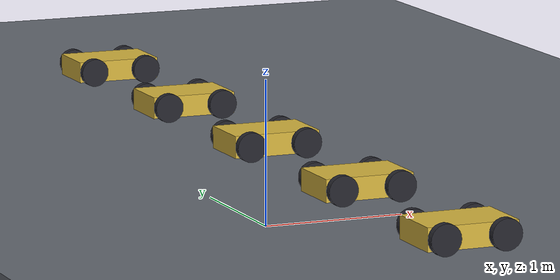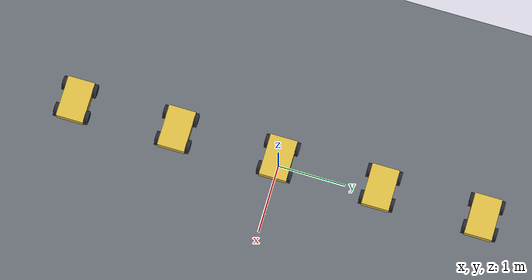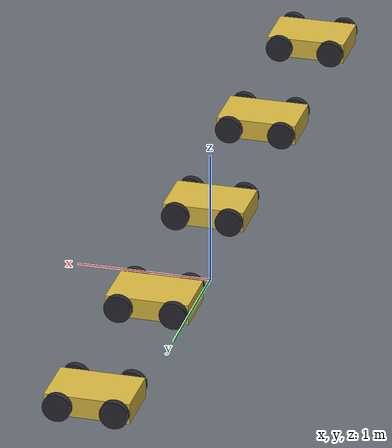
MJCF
<mujoco model="ladder0_rung7_mujoco">

  <!-- Only gravity and the timestep are set from the contract.  Everything
       else is MuJoCo's default, on purpose: this arm is the un-tuned
       reference for the solver OmniSim runs underneath. -->
  <option timestep="0.004" gravity="0 0 -9.81"/>

  <default>
    <!-- sliding / torsional / rolling.  condim defaults to 3, so only the
         first component is in force; the rest are declared for the record. -->
    <geom friction="1.0 0.005 0.0001"/>
  </default>

  <worldbody>
    <!-- Floor slab: full extents 20.0 x 20.0 x 0.2 m centred at z=0.4,
         so its top surface is at z=0.5.  Deliberately NOT at z=0. -->
    <geom name="floor" type="box" size="10.0 10.0 0.1" pos="0 0 0.4"
          rgba="0.4 0.42 0.45 1"/>

    <!-- r0: lane y = -3.00 m, commanded 2.0 rad/s -->
    <body name="r0_chassis" pos="0 -3.0 0.6">
      <freejoint name="r0_chassis_free"/>
      <geom name="r0_chassis_geom" type="box" size="0.3 0.2 0.075"
            mass="5.0" rgba="0.85 0.72 0.25 1"/>

      <body name="r0_fl" pos="0.2 0.225 0">
        <joint name="r0_fl_joint" type="hinge" axis="0 1 0"/>
        <geom name="r0_fl_geom" type="cylinder"
              fromto="0 -0.025 0  0 0.025 0" size="0.1" mass="0.5"
              rgba="0.15 0.15 0.18 1"/>
      </body>

      <body name="r0_fr" pos="0.2 -0.225 0">
        <joint name="r0_fr_joint" type="hinge" axis="0 1 0"/>
        <geom name="r0_fr_geom" type="cylinder"
              fromto="0 -0.025 0  0 0.025 0" size="0.1" mass="0.5"
              rgba="0.15 0.15 0.18 1"/>
      </body>

      <body name="r0_rl" pos="-0.2 0.225 0">
        <joint name="r0_rl_joint" type="hinge" axis="0 1 0"/>
        <geom name="r0_rl_geom" type="cylinder"
              fromto="0 -0.025 0  0 0.025 0" size="0.1" mass="0.5"
              rgba="0.15 0.15 0.18 1"/>
      </body>

      <body name="r0_rr" pos="-0.2 -0.225 0">
        <joint name="r0_rr_joint" type="hinge" axis="0 1 0"/>
        <geom name="r0_rr_geom" type="cylinder"
              fromto="0 -0.025 0  0 0.025 0" size="0.1" mass="0.5"
              rgba="0.15 0.15 0.18 1"/>
      </body>
    </body>

    <!-- r1: lane y = -1.50 m, commanded 3.0 rad/s -->
    <body name="r1_chassis" pos="0 -1.5 0.6">
      <freejoint name="r1_chassis_free"/>
      <geom name="r1_chassis_geom" type="box" size="0.3 0.2 0.075"
            mass="5.0" rgba="0.85 0.72 0.25 1"/>

      <body name="r1_fl" pos="0.2 0.225 0">
        <joint name="r1_fl_joint" type="hinge" axis="0 1 0"/>
        <geom name="r1_fl_geom" type="cylinder"
              fromto="0 -0.025 0  0 0.025 0" size="0.1" mass="0.5"
              rgba="0.15 0.15 0.18 1"/>
      </body>

      <body name="r1_fr" pos="0.2 -0.225 0">
        <joint name="r1_fr_joint" type="hinge" axis="0 1 0"/>
        <geom name="r1_fr_geom" type="cylinder"
              fromto="0 -0.025 0  0 0.025 0" size="0.1" mass="0.5"
              rgba="0.15 0.15 0.18 1"/>
      </body>

      <body name="r1_rl" pos="-0.2 0.225 0">
        <joint name="r1_rl_joint" type="hinge" axis="0 1 0"/>
        <geom name="r1_rl_geom" type="cylinder"
              fromto="0 -0.025 0  0 0.025 0" size="0.1" mass="0.5"
              rgba="0.15 0.15 0.18 1"/>
      </body>

      <body name="r1_rr" pos="-0.2 -0.225 0">
        <joint name="r1_rr_joint" type="hinge" axis="0 1 0"/>
        <geom name="r1_rr_geom" type="cylinder"
              fromto="0 -0.025 0  0 0.025 0" size="0.1" mass="0.5"
              rgba="0.15 0.15 0.18 1"/>
      </body>
    </body>

    <!-- r2: lane y = +0.00 m, commanded 4.0 rad/s -->
    <body name="r2_chassis" pos="0 0.0 0.6">
      <freejoint name="r2_chassis_free"/>
      <geom name="r2_chassis_geom" type="box" size="0.3 0.2 0.075"
            mass="5.0" rgba="0.85 0.72 0.25 1"/>

      <body name="r2_fl" pos="0.2 0.225 0">
        <joint name="r2_fl_joint" type="hinge" axis="0 1 0"/>
        <geom name="r2_fl_geom" type="cylinder"
              fromto="0 -0.025 0  0 0.025 0" size="0.1" mass="0.5"
              rgba="0.15 0.15 0.18 1"/>
      </body>

      <body name="r2_fr" pos="0.2 -0.225 0">
        <joint name="r2_fr_joint" type="hinge" axis="0 1 0"/>
        <geom name="r2_fr_geom" type="cylinder"
              fromto="0 -0.025 0  0 0.025 0" size="0.1" mass="0.5"
              rgba="0.15 0.15 0.18 1"/>
      </body>

      <body name="r2_rl" pos="-0.2 0.225 0">
        <joint name="r2_rl_joint" type="hinge" axis="0 1 0"/>
        <geom name="r2_rl_geom" type="cylinder"
              fromto="0 -0.025 0  0 0.025 0" size="0.1" mass="0.5"
              rgba="0.15 0.15 0.18 1"/>
      </body>

      <body name="r2_rr" pos="-0.2 -0.225 0">
        <joint name="r2_rr_joint" type="hinge" axis="0 1 0"/>
        <geom name="r2_rr_geom" type="cylinder"
              fromto="0 -0.025 0  0 0.025 0" size="0.1" mass="0.5"
              rgba="0.15 0.15 0.18 1"/>
      </body>
    </body>

    <!-- r3: lane y = +1.50 m, commanded 5.0 rad/s -->
    <body name="r3_chassis" pos="0 1.5 0.6">
      <freejoint name="r3_chassis_free"/>
      <geom name="r3_chassis_geom" type="box" size="0.3 0.2 0.075"
            mass="5.0" rgba="0.85 0.72 0.25 1"/>

      <body name="r3_fl" pos="0.2 0.225 0">
        <joint name="r3_fl_joint" type="hinge" axis="0 1 0"/>
        <geom name="r3_fl_geom" type="cylinder"
              fromto="0 -0.025 0  0 0.025 0" size="0.1" mass="0.5"
              rgba="0.15 0.15 0.18 1"/>
      </body>

      <body name="r3_fr" pos="0.2 -0.225 0">
        <joint name="r3_fr_joint" type="hinge" axis="0 1 0"/>
        <geom name="r3_fr_geom" type="cylinder"
              fromto="0 -0.025 0  0 0.025 0" size="0.1" mass="0.5"
              rgba="0.15 0.15 0.18 1"/>
      </body>

      <body name="r3_rl" pos="-0.2 0.225 0">
        <joint name="r3_rl_joint" type="hinge" axis="0 1 0"/>
        <geom name="r3_rl_geom" type="cylinder"
              fromto="0 -0.025 0  0 0.025 0" size="0.1" mass="0.5"
              rgba="0.15 0.15 0.18 1"/>
      </body>

      <body name="r3_rr" pos="-0.2 -0.225 0">
        <joint name="r3_rr_joint" type="hinge" axis="0 1 0"/>
        <geom name="r3_rr_geom" type="cylinder"
              fromto="0 -0.025 0  0 0.025 0" size="0.1" mass="0.5"
              rgba="0.15 0.15 0.18 1"/>
      </body>
    </body>

    <!-- r4: lane y = +3.00 m, commanded 6.0 rad/s -->
    <body name="r4_chassis" pos="0 3.0 0.6">
      <freejoint name="r4_chassis_free"/>
      <geom name="r4_chassis_geom" type="box" size="0.3 0.2 0.075"
            mass="5.0" rgba="0.85 0.72 0.25 1"/>

      <body name="r4_fl" pos="0.2 0.225 0">
        <joint name="r4_fl_joint" type="hinge" axis="0 1 0"/>
        <geom name="r4_fl_geom" type="cylinder"
              fromto="0 -0.025 0  0 0.025 0" size="0.1" mass="0.5"
              rgba="0.15 0.15 0.18 1"/>
      </body>

      <body name="r4_fr" pos="0.2 -0.225 0">
        <joint name="r4_fr_joint" type="hinge" axis="0 1 0"/>
        <geom name="r4_fr_geom" type="cylinder"
              fromto="0 -0.025 0  0 0.025 0" size="0.1" mass="0.5"
              rgba="0.15 0.15 0.18 1"/>
      </body>

      <body name="r4_rl" pos="-0.2 0.225 0">
        <joint name="r4_rl_joint" type="hinge" axis="0 1 0"/>
        <geom name="r4_rl_geom" type="cylinder"
              fromto="0 -0.025 0  0 0.025 0" size="0.1" mass="0.5"
              rgba="0.15 0.15 0.18 1"/>
      </body>

      <body name="r4_rr" pos="-0.2 -0.225 0">
        <joint name="r4_rr_joint" type="hinge" axis="0 1 0"/>
        <geom name="r4_rr_geom" type="cylinder"
              fromto="0 -0.025 0  0 0.025 0" size="0.1" mass="0.5"
              rgba="0.15 0.15 0.18 1"/>
      </body>
    </body>
  </worldbody>

  <actuator>
    <!-- Deadbeat velocity servo: kv = I/dt = 0.625000, half the
         explicit-Euler stability bound 2I/dt, for a wheel's
         own I = m r^2 / 2 = 0.002500 kg m^2. -->
    <velocity name="r0_fl_motor" joint="r0_fl_joint" kv="0.625000"/>
    <velocity name="r0_fr_motor" joint="r0_fr_joint" kv="0.625000"/>
    <velocity name="r0_rl_motor" joint="r0_rl_joint" kv="0.625000"/>
    <velocity name="r0_rr_motor" joint="r0_rr_joint" kv="0.625000"/>
    <!-- Deadbeat velocity servo: kv = I/dt = 0.625000, half the
         explicit-Euler stability bound 2I/dt, for a wheel's
         own I = m r^2 / 2 = 0.002500 kg m^2. -->
    <velocity name="r1_fl_motor" joint="r1_fl_joint" kv="0.625000"/>
    <velocity name="r1_fr_motor" joint="r1_fr_joint" kv="0.625000"/>
    <velocity name="r1_rl_motor" joint="r1_rl_joint" kv="0.625000"/>
    <velocity name="r1_rr_motor" joint="r1_rr_joint" kv="0.625000"/>
    <!-- Deadbeat velocity servo: kv = I/dt = 0.625000, half the
         explicit-Euler stability bound 2I/dt, for a wheel's
         own I = m r^2 / 2 = 0.002500 kg m^2. -->
    <velocity name="r2_fl_motor" joint="r2_fl_joint" kv="0.625000"/>
    <velocity name="r2_fr_motor" joint="r2_fr_joint" kv="0.625000"/>
    <velocity name="r2_rl_motor" joint="r2_rl_joint" kv="0.625000"/>
    <velocity name="r2_rr_motor" joint="r2_rr_joint" kv="0.625000"/>
    <!-- Deadbeat velocity servo: kv = I/dt = 0.625000, half the
         explicit-Euler stability bound 2I/dt, for a wheel's
         own I = m r^2 / 2 = 0.002500 kg m^2. -->
    <velocity name="r3_fl_motor" joint="r3_fl_joint" kv="0.625000"/>
    <velocity name="r3_fr_motor" joint="r3_fr_joint" kv="0.625000"/>
    <velocity name="r3_rl_motor" joint="r3_rl_joint" kv="0.625000"/>
    <velocity name="r3_rr_motor" joint="r3_rr_joint" kv="0.625000"/>
    <!-- Deadbeat velocity servo: kv = I/dt = 0.625000, half the
         explicit-Euler stability bound 2I/dt, for a wheel's
         own I = m r^2 / 2 = 0.002500 kg m^2. -->
    <velocity name="r4_fl_motor" joint="r4_fl_joint" kv="0.625000"/>
    <velocity name="r4_fr_motor" joint="r4_fr_joint" kv="0.625000"/>
    <velocity name="r4_rl_motor" joint="r4_rl_joint" kv="0.625000"/>
    <velocity name="r4_rr_motor" joint="r4_rr_joint" kv="0.625000"/>
  </actuator>

</mujoco>
